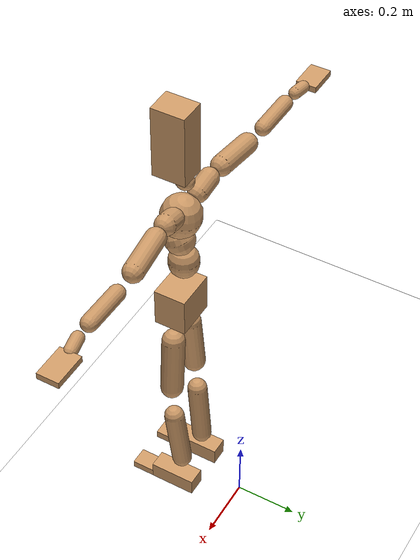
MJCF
<mujoco model="humanoid">
  <option integrator="implicitfast" />

  <visual>
    <global offwidth="1280" offheight="960" />
    <headlight active="1" ambient="0.34 0.34 0.34" diffuse="0.5 0.5 0.5" />
  </visual>

  <default>
    <joint damping="2" stiffness="2" armature="0.01" limited="true" solimplimit="0 .99 .01" />
    <geom condim="1" friction="0.7 0.005 0.0001" solimp=".99 .99 .003" solref="0.015 1" margin="0.001" rgba="0.8 0.6 .4 1" />
    <default class="smplcontact">
      <geom condim="3" friction="1. 0.005 0.0001" solref="0.015 1" solimp="0.98 0.98 0.001" priority="1" />
    </default>
    <default class="stiff_medium">
      <joint stiffness="10" />
    </default>
    <default class="stiff_medium_higher">
      <joint stiffness="50" />
    </default>
    <default class="stiff_high">
      <joint stiffness="100" />
    </default>
  </default>

  <asset>
    <texture type="skybox" builtin="gradient" rgb1="0.99 0.99 0.99" rgb2="0.608 0.828 0.892" width="100" />
    <texture builtin="flat" height="1278" mark="cross" markrgb="1 1 1" name="texgeom" random="0.01" rgb1="0.8 0.6 0.4" rgb2="0.8 0.6 0.4" type="cube" width="127" />
    <texture name="texplane" type="2d" builtin="checker" markrgb="1 1 1" rgb1="0.756 0.772 0.76" rgb2="0.6 0.6 0.6" width="100" height="100" />
    <material name="MatPlane" reflectance="0.5" texture="texplane" texrepeat="1 1" texuniform="true" />
    <material name="geom" texture="texgeom" texuniform="true" />
  </asset>

  <worldbody>
    <light name="tracking_light" pos="0 0 7" dir="0 0 -1" directional="true" cutoff="100" exponent="1" diffuse="1 1 1" specular="0.1 0.1 0.1" mode="trackcom" />
    <camera name="back" pos="0 3 2.4" xyaxes="-1 0 0 0 -1 2" mode="trackcom" />
    <camera name="side" pos="-3 0 2.4" xyaxes="0 -1 0 1 0 2" mode="trackcom" />
    <camera name="front_side" pos="-2.8 -2.8 0.8" xyaxes="0.5 -0.5 0 0.1 0.1 1" mode="trackcom" />
    <geom condim="3" name="floor" pos="0 0 0" rgba="1 1 1 1" size="100 100 .2" type="plane" material="MatPlane" />
    <body name="Pelvis" pos="-0.0018 -0.2233 0.78964" euler="90 0 0">
      <site name="Pelvis" size="0.01" />
      <freejoint name="Pelvis" />
      <geom type="box" pos="0 -0.0107248 -0.00342705" size="0.0666094 0.0639943 0.0517173" quat="1.0000 0.0000 0.0000 0.0000" density="3165.830099" name="Pelvis" />
      <body name="L_Hip" pos="0.0433055 -0.0810121 -0.00423708">
        <joint name="L_Hip_x" type="hinge" pos="0 0 0" axis="1 0 0" stiffness="10" range="-160.0 22.92" class="stiff_medium" damping="15" />
        <joint name="L_Hip_y" type="hinge" pos="0 0 0" axis="0 1 0" stiffness="10" range="-70.0 70.0" class="stiff_medium" damping="10" />
        <joint name="L_Hip_z" type="hinge" pos="0 0 0" axis="0 0 1" stiffness="10" range="-28.65 90.0" class="stiff_medium" damping="10" />
        <geom type="capsule" density="2040.816327" fromto="0.00589031 -0.0642261 -0.00077051 0.023445 -0.257071 -0.00308259" size="0.037023" name="L_Hip" />
        <body name="L_Knee" pos="0.0293353 -0.321297 -0.0038531">
          <joint name="L_Knee_x" type="hinge" pos="0 0 0" axis="1 0 0" range="-5.16 171.89" damping="8" />
          <joint name="L_Knee_y" type="hinge" pos="0 0 0" axis="0 1 0" range="-4.58 6.88" damping="8" />
          <joint name="L_Knee_z" type="hinge" pos="0 0 0" axis="0 0 1" range="-6.88 4.58" damping="8" />
          <geom type="capsule" density="1234.567901" fromto="-0.00232049 -0.0681614 -0.00746676 -0.00934236 -0.272652 -0.0299881" size="0.0325682" name="L_Knee" />
          <body name="L_Ankle" pos="-0.0116628 -0.340814 -0.0374549">
            <joint name="L_Ankle_x" type="hinge" pos="0 0 0" axis="1 0 0" range="-45.84 45.84" class="stiff_medium" damping="6" />
            <joint name="L_Ankle_y" type="hinge" pos="0 0 0" axis="0 1 0" range="-74.48 22.92" class="stiff_medium" damping="3" />
            <joint name="L_Ankle_z" type="hinge" pos="0 0 0" axis="0 0 1" range="-4.58 4.58" class="stiff_medium" damping="6" />
            <geom type="box" pos="0.0145182 -0.0148921 0.0215568" size="0.0300957 0.0289118 0.075716" quat="1.0000 0.0000 0.0000 0.0000" density="449.071558" name="L_Ankle" class="smplcontact" />
            <body name="L_Toe" pos="0.0164498 -0.034769 0.10627">
              <joint name="L_Toe_x" type="hinge" pos="0 0 0" axis="1 0 0" range="-91.67 22.92" />
              <joint name="L_Toe_y" type="hinge" pos="0 0 0" axis="0 1 0" range="-4.58 4.58" />
              <joint name="L_Toe_z" type="hinge" pos="0 0 0" axis="0 0 1" range="-4.58 4.58" />
              <geom type="box" pos="-0.0018693 0.00342705 0.0220913" size="0.0297842 0.012462 0.0441825" quat="1.0000 0.0000 0.0000 0.0000" density="423.206892" name="L_Toe" class="smplcontact" />
            </body>
          </body>
        </body>
      </body>
      <body name="R_Hip" pos="-0.0421839 -0.0802144 -0.00267933">
        <joint name="R_Hip_x" type="hinge" pos="0 0 0" axis="1 0 0" stiffness="10" range="-160.0 22.92" class="stiff_medium" damping="15" />
        <joint name="R_Hip_y" type="hinge" pos="0 0 0" axis="0 1 0" stiffness="10" range="-70.0 70.0" class="stiff_medium" damping="10" />
        <joint name="R_Hip_z" type="hinge" pos="0 0 0" axis="0 0 1" stiffness="10" range="-90.0 28.65" class="stiff_medium" damping="10" />
        <geom type="capsule" density="2040.816327" fromto="-0.00657611 -0.0655109 -0.00153276 -0.026186 -0.262123 -0.00607129" size="0.0364812" name="R_Hip" />
        <body name="R_Knee" pos="-0.0327621 -0.327634 -0.00760405">
          <joint name="R_Knee_x" type="hinge" pos="0 0 0" axis="1 0 0" range="-5.16 171.89" damping="8" />
          <joint name="R_Knee_y" type="hinge" pos="0 0 0" axis="0 1 0" range="-6.88 4.58" damping="8" />
          <joint name="R_Knee_z" type="hinge" pos="0 0 0" axis="0 0 1" range="-4.58 6.88" damping="8" />
          <geom type="capsule" density="1234.567901" fromto="0.00272371 -0.0682515 -0.00726296 0.0107732 -0.272914 -0.028928" size="0.0325682" name="R_Knee" />
          <body name="R_Ankle" pos="0.0134969 -0.341165 -0.036191">
            <joint name="R_Ankle_x" type="hinge" pos="0 0 0" axis="1 0 0" range="-45.84 45.84" class="stiff_medium" damping="6" />
            <joint name="R_Ankle_y" type="hinge" pos="0 0 0" axis="0 1 0" range="-22.92 74.48" class="stiff_medium" damping="3" />
            <joint name="R_Ankle_z" type="hinge" pos="0 0 0" axis="0 0 1" range="-4.58 4.58" class="stiff_medium" damping="6" />
            <geom type="box" pos="-0.0132097 -0.0108419 0.0228039" size="0.0300957 0.0297842 0.0770521" quat="1.0000 0.0000 0.0000 0.0000" density="434.700981" name="R_Ankle" class="smplcontact" />
            <body name="R_Toe" pos="-0.0158267 -0.0299711 0.109833">
              <joint name="R_Toe_x" type="hinge" pos="0 0 0" axis="1 0 0" range="-91.67 22.92" />
              <joint name="R_Toe_y" type="hinge" pos="0 0 0" axis="0 1 0" range="-4.58 4.58" />
              <joint name="R_Toe_z" type="hinge" pos="0 0 0" axis="0 0 1" range="-4.58 4.58" />
              <geom type="box" pos="0.00261702 0.00280395 0.0202206" size="0.0298465 0.013459 0.0439153" quat="1.0000 0.0000 0.0000 0.0000" density="407.384095" name="R_Toe" class="smplcontact" />
            </body>
          </body>
        </body>
      </body>
      <body name="Torso" pos="-0.00155775 0.0966118 -0.0166368">
        <joint name="Torso_x" type="hinge" pos="0 0 0" axis="1 0 0" range="-25.78 57.3" class="stiff_medium" damping="15" />
        <joint name="Torso_y" type="hinge" pos="0 0 0" axis="0 1 0" range="-57.3 57.3" class="stiff_high" damping="20" />
        <joint name="Torso_z" type="hinge" pos="0 0 0" axis="0 0 1" range="-34.38 34.38" class="stiff_high" damping="20" />
        <geom type="capsule" density="2040.816327" fromto="0.00215613 0.0540301 0.000431226 0.00260044 0.0660263 0.000520087" size="0.0480394" name="Torso" />
        <body name="Spine" pos="0.00475754 0.120145 0.000951509">
          <joint name="Spine_x" type="hinge" pos="0 0 0" axis="1 0 0" stiffness="10" range="-25.78 57.3" class="stiff_medium" damping="15" />
          <joint name="Spine_y" type="hinge" pos="0 0 0" axis="0 1 0" stiffness="10" range="-57.3 57.3" class="stiff_high" damping="8" />
          <joint name="Spine_z" type="hinge" pos="0 0 0" axis="0 0 1" stiffness="20" range="-34.38 34.38" class="stiff_high" damping="12" />
          <geom type="capsule" density="2040.816327" fromto="0.000555278 0.0211212 0.0101893 0.000644139 0.0258308 0.0124996" size="0.0471649" name="Spine" />
          <body name="Chest" pos="0.00119942 0.0469521 0.0226889">
            <joint name="Chest_x" type="hinge" pos="0 0 0" axis="1 0 0" stiffness="10" range="-25.78 57.3" class="stiff_medium" damping="15" />
            <joint name="Chest_y" type="hinge" pos="0 0 0" axis="0 1 0" stiffness="10" range="-57.3 57.3" class="stiff_high" damping="8" />
            <joint name="Chest_z" type="hinge" pos="0 0 0" axis="0 0 1" stiffness="20" range="-34.38 34.38" class="stiff_high" damping="12" />
            <geom type="capsule" density="2040.816327" fromto="-0.000681299 0.0605839 -0.015451 -0.00077016 0.0740019 -0.0189166" size="0.0625949" name="Chest" />
            <body name="Neck" pos="-0.0021178 0.189287 -0.0411764">
              <joint name="Neck_x" type="hinge" pos="0 0 0" axis="1 0 0" range="-28.65 57.3" class="stiff_medium_higher" damping="10" />
              <joint name="Neck_y" type="hinge" pos="0 0 0" axis="0 1 0" range="-40.11 40.11" class="stiff_medium_higher" damping="10" />
              <joint name="Neck_z" type="hinge" pos="0 0 0" axis="0 0 1" range="-40.11 40.11" class="stiff_medium_higher" damping="10" />
              <geom type="capsule" density="1000" fromto="0.000899901 0.0115839 0.00916921 0.00366131 0.0463242 0.0366051" size="0.0273023" name="Neck" />
              <body name="Head" pos="0.00462291 0.0578966 0.0457026">
                <joint name="Head_x" type="hinge" pos="0 0 0" axis="1 0 0" range="-28.65 57.3" class="stiff_medium_higher" damping="2" />
                <joint name="Head_y" type="hinge" pos="0 0 0" axis="0 1 0" range="-40.11 40.11" class="stiff_medium_higher" damping="2" />
                <joint name="Head_z" type="hinge" pos="0 0 0" axis="0 0 1" range="-40.11 40.11" class="stiff_medium_higher" damping="2" />
                <geom type="box" pos="-0.0029316 0.086982 -0.0080968" size="0.0422988 0.114586 0.053048" quat="1.0000 0.0000 0.0000 0.0000" density="1018.069894" name="Head" />
                <geom type="capsule" name="nose" size="0.01396 0.00698" pos="0 0.0695061 0.0349" quat="1 0 0 0" mass="0" contype="0" conaffinity="0" />
              </body>
            </body>
            <body name="L_Thorax" pos="0.0490134 0.108184 -0.029608">
              <joint name="L_Thorax_x" type="hinge" pos="0 0 0" axis="1 0 0" range="-10.89 4.58" class="stiff_medium_higher" damping="20" />
              <joint name="L_Thorax_y" type="hinge" pos="0 0 0" axis="0 1 0" range="-28.65 17.19" class="stiff_medium_higher" damping="20" />
              <joint name="L_Thorax_z" type="hinge" pos="0 0 0" axis="0 0 1" range="-31.51 40.11" class="stiff_medium_higher" damping="20" />
              <geom type="capsule" density="1000" fromto="0.0160911 0.00539316 -0.00158267 0.064362 0.0215719 -0.00626831" size="0.0323802" name="L_Thorax" />
              <body name="L_Shoulder" pos="0.0804531 0.026965 -0.00785098">
                <joint name="L_Shoulder_x" type="hinge" pos="0 0 0" axis="1 0 0" range="-97.4 97.4" class="stiff_medium" damping="6" />
                <joint name="L_Shoulder_y" type="hinge" pos="0 0 0" axis="0 1 0" range="-108.86 80.21" class="stiff_medium" damping="6" />
                <joint name="L_Shoulder_z" type="hinge" pos="0 0 0" axis="0 0 1" range="-97.4 85.94" class="stiff_medium" damping="6" />
                <geom type="capsule" density="1000" fromto="0.0451288 -0.00224315 -0.00478153 0.180599 -0.00885147 -0.0191285" size="0.0316042" name="L_Shoulder" />
                <body name="L_Elbow" pos="0.225728 -0.0110946 -0.0239101">
                  <joint name="L_Elbow_x" type="hinge" pos="0 0 0" axis="1 0 0" range="-17.19 4.58" damping="5" />
                  <joint name="L_Elbow_y" type="hinge" pos="0 0 0" axis="0 1 0" range="-180.0 17.19" damping="5" />
                  <joint name="L_Elbow_z" type="hinge" pos="0 0 0" axis="0 0 1" range="-100.84 4.58" damping="5" />
                  <geom type="capsule" density="1000" fromto="0.0433019 0.00156451 -0.00018243 0.173381 0.00625989 -0.000791091" size="0.0247576" name="L_Elbow" />
                  <body name="L_Wrist" pos="0.216683 0.0078244 -0.00103465">
                    <joint name="L_Wrist_x" type="hinge" pos="0 0 0" axis="1 0 0" range="-180.0 22.92" />
                    <joint name="L_Wrist_y" type="hinge" pos="0 0 0" axis="0 1 0" range="-17.19 17.19" />
                    <joint name="L_Wrist_z" type="hinge" pos="0 0 0" axis="0 0 1" range="-22.92 22.92" />
                    <geom type="capsule" density="1000" fromto="0.0146071 -0.00139975 -0.0026084 0.0584307 -0.00566038 -0.010434" size="0.0194393" name="L_Wrist" class="smplcontact" />
                    <body name="L_Hand" pos="0.0730357 -0.00712107 -0.012981">
                      <joint name="L_Hand_x" type="hinge" pos="0 0 0" axis="1 0 0" range="-17.19 17.19" />
                      <joint name="L_Hand_y" type="hinge" pos="0 0 0" axis="0 1 0" range="-51.57 51.57" />
                      <joint name="L_Hand_z" type="hinge" pos="0 0 0" axis="0 0 1" range="-91.67 91.67" />
                      <geom type="box" pos="0.0436969 0.0006231 -0.00361398" size="0.0518513 0.00984498 0.0335228" quat="1.0000 0.0000 0.0000 0.0000" density="400.552564" name="L_Hand" class="smplcontact" />
                    </body>
                  </body>
                </body>
              </body>
            </body>
            <body name="R_Thorax" pos="-0.0513123 0.106206 -0.032376">
              <joint name="R_Thorax_x" type="hinge" pos="0 0 0" axis="1 0 0" range="-10.89 4.58" class="stiff_medium_higher" damping="20" />
              <joint name="R_Thorax_y" type="hinge" pos="0 0 0" axis="0 1 0" range="-17.19 28.65" class="stiff_medium_higher" damping="20" />
              <joint name="R_Thorax_z" type="hinge" pos="0 0 0" axis="0 0 1" range="-40.11 31.51" class="stiff_medium_higher" damping="20" />
              <geom type="capsule" density="1000" fromto="-0.0169737 0.00574629 -0.00160003 -0.0678968 0.0229859 -0.00646249" size="0.0317586" name="R_Thorax" />
              <body name="R_Shoulder" pos="-0.0848784 0.028797 -0.00806328">
                <joint name="R_Shoulder_x" type="hinge" pos="0 0 0" axis="1 0 0" range="-97.4 97.4" class="stiff_medium" damping="6" />
                <joint name="R_Shoulder_y" type="hinge" pos="0 0 0" axis="0 1 0" range="-80.21 108.86" class="stiff_medium" damping="6" />
                <joint name="R_Shoulder_z" type="hinge" pos="0 0 0" axis="0 0 1" range="-85.94 97.4" class="stiff_medium" damping="6" />
                <geom type="capsule" density="1000" fromto="-0.0440858 -0.00233825 -0.00372898 -0.176513 -0.00929438 -0.0148588" size="0.03246" name="R_Shoulder" />
                <body name="R_Elbow" pos="-0.220597 -0.0115714 -0.0185876">
                  <joint name="R_Elbow_x" type="hinge" pos="0 0 0" axis="1 0 0" range="-17.19 4.58" damping="5" />
                  <joint name="R_Elbow_y" type="hinge" pos="0 0 0" axis="0 1 0" range="-17.19 180.0" damping="5" />
                  <joint name="R_Elbow_z" type="hinge" pos="0 0 0" axis="0 0 1" range="-4.58 100.84" damping="5" />
                  <geom type="capsule" density="1000" fromto="-0.0444327 0.00137454 -0.000956849 -0.177556 0.00537432 -0.00382625" size="0.024941" name="R_Elbow" />
                  <body name="R_Wrist" pos="-0.221989 0.00674887 -0.00484424">
                    <joint name="R_Wrist_x" type="hinge" pos="0 0 0" axis="1 0 0" range="-180.0 22.92" />
                    <joint name="R_Wrist_y" type="hinge" pos="0 0 0" axis="0 1 0" range="-17.19 17.19" />
                    <joint name="R_Wrist_z" type="hinge" pos="0 0 0" axis="0 0 1" range="-22.92 22.92" />
                    <geom type="capsule" density="1000" fromto="-0.0146954 -0.00105144 -0.0018164 -0.0588668 -0.00426865 -0.00720739" size="0.0199284" name="R_Wrist" class="smplcontact" />
                    <body name="R_Hand" pos="-0.0735591 -0.00531987 -0.00896228">
                      <joint name="R_Hand_x" type="hinge" pos="0 0 0" axis="1 0 0" range="-17.19 17.19" />
                      <joint name="R_Hand_y" type="hinge" pos="0 0 0" axis="0 1 0" range="-51.57 51.57" />
                      <joint name="R_Hand_z" type="hinge" pos="0 0 0" axis="0 0 1" range="-91.67 91.67" />
                      <geom type="box" pos="-0.0409492 -0.00056079 -0.00492249" size="0.0504331 0.0102188 0.0340213" quat="1.0000 0.0000 0.0000 0.0000" density="403.679611" name="R_Hand" class="smplcontact" />
                    </body>
                  </body>
                </body>
              </body>
            </body>
          </body>
        </body>
      </body>
    </body>
  </worldbody>
  <actuator>
    <general name="L_Hip_x" joint="L_Hip_x" biastype="affine" gainprm="287.33006409732246" biasprm="-215.3247604770444 -180 -2.0" ctrllimited="true" ctrlrange="-1 1" forcerange="-360 360" />
    <general name="L_Hip_y" joint="L_Hip_y" biastype="affine" gainprm="219.9114857512855" biasprm="0.0 -180 -2.0" ctrllimited="true" ctrlrange="-1 1" forcerange="-360 360" />
    <general name="L_Hip_z" joint="L_Hip_z" biastype="affine" gainprm="186.3749841742145" biasprm="96.3683546488669 -180 -2.0" ctrllimited="true" ctrlrange="-1 1" forcerange="-360 360" />
    <general name="L_Knee_x" joint="L_Knee_x" biastype="affine" gainprm="278.10948965903646" biasprm="261.8988715665131 -180 -2.0" ctrllimited="true" ctrlrange="-1 1" forcerange="-360 360" />
    <general name="L_Knee_y" joint="L_Knee_y" biastype="affine" gainprm="18.001325905069514" biasprm="3.612831551628262 -180 -2.0" ctrllimited="true" ctrlrange="-1 1" forcerange="-360 360" />
    <general name="L_Knee_z" joint="L_Knee_z" biastype="affine" gainprm="18.001325905069514" biasprm="-3.612831551628262 -180 -2.0" ctrllimited="true" ctrlrange="-1 1" forcerange="-360 360" />
    <general name="L_Ankle_x" joint="L_Ankle_x" biastype="affine" gainprm="72.00530362027807" biasprm="0.0 -90 -2.0" ctrllimited="true" ctrlrange="-1 1" forcerange="-180 180" />
    <general name="L_Ankle_y" joint="L_Ankle_y" biastype="affine" gainprm="76.49778111491148" biasprm="-40.49512930477244 -90 -2.0" ctrllimited="true" ctrlrange="-1 1" forcerange="-180 180" />
    <general name="L_Ankle_z" joint="L_Ankle_z" biastype="affine" gainprm="7.1942471767206255" biasprm="0.0 -90 -2.0" ctrllimited="true" ctrlrange="-1 1" forcerange="-180 180" />
    <general name="L_Toe_x" joint="L_Toe_x" biastype="affine" gainprm="71.99902043497087" biasprm="-43.19689898685965 -72 -0.8" ctrllimited="true" ctrlrange="-1 1" forcerange="-144 144" />
    <general name="L_Toe_y" joint="L_Toe_y" biastype="affine" gainprm="5.755397741376501" biasprm="0.0 -72 -0.8" ctrllimited="true" ctrlrange="-1 1" forcerange="-144 144" />
    <general name="L_Toe_z" joint="L_Toe_z" biastype="affine" gainprm="5.755397741376501" biasprm="0.0 -72 -0.8" ctrllimited="true" ctrlrange="-1 1" forcerange="-144 144" />
    <general name="R_Hip_x" joint="R_Hip_x" biastype="affine" gainprm="287.33006409732246" biasprm="-215.3247604770444 -180 -2.0" ctrllimited="true" ctrlrange="-1 1" forcerange="-360 360" />
    <general name="R_Hip_y" joint="R_Hip_y" biastype="affine" gainprm="219.9114857512855" biasprm="0.0 -180 -2.0" ctrllimited="true" ctrlrange="-1 1" forcerange="-360 360" />
    <general name="R_Hip_z" joint="R_Hip_z" biastype="affine" gainprm="186.3749841742145" biasprm="-96.3683546488669 -180 -2.0" ctrllimited="true" ctrlrange="-1 1" forcerange="-360 360" />
    <general name="R_Knee_x" joint="R_Knee_x" biastype="affine" gainprm="278.10948965903646" biasprm="261.8988715665131 -180 -2.0" ctrllimited="true" ctrlrange="-1 1" forcerange="-360 360" />
    <general name="R_Knee_y" joint="R_Knee_y" biastype="affine" gainprm="18.001325905069514" biasprm="-3.612831551628262 -180 -2.0" ctrllimited="true" ctrlrange="-1 1" forcerange="-360 360" />
    <general name="R_Knee_z" joint="R_Knee_z" biastype="affine" gainprm="18.001325905069514" biasprm="3.612831551628262 -180 -2.0" ctrllimited="true" ctrlrange="-1 1" forcerange="-360 360" />
    <general name="R_Ankle_x" joint="R_Ankle_x" biastype="affine" gainprm="72.00530362027807" biasprm="0.0 -90 -2.0" ctrllimited="true" ctrlrange="-1 1" forcerange="-180 180" />
    <general name="R_Ankle_y" joint="R_Ankle_y" biastype="affine" gainprm="76.49778111491148" biasprm="40.49512930477244 -90 -2.0" ctrllimited="true" ctrlrange="-1 1" forcerange="-180 180" />
    <general name="R_Ankle_z" joint="R_Ankle_z" biastype="affine" gainprm="7.1942471767206255" biasprm="0.0 -90 -2.0" ctrllimited="true" ctrlrange="-1 1" forcerange="-180 180" />
    <general name="R_Toe_x" joint="R_Toe_x" biastype="affine" gainprm="71.99902043497087" biasprm="-43.19689898685965 -72 -0.8" ctrllimited="true" ctrlrange="-1 1" forcerange="-144 144" />
    <general name="R_Toe_y" joint="R_Toe_y" biastype="affine" gainprm="5.755397741376501" biasprm="0.0 -72 -0.8" ctrllimited="true" ctrlrange="-1 1" forcerange="-144 144" />
    <general name="R_Toe_z" joint="R_Toe_z" biastype="affine" gainprm="5.755397741376501" biasprm="0.0 -72 -0.8" ctrllimited="true" ctrlrange="-1 1" forcerange="-144 144" />
    <general name="Torso_x" joint="Torso_x" biastype="affine" gainprm="174.00234510682668" biasprm="66.0153336274335 -240 -4.0" ctrllimited="true" ctrlrange="-1 1" forcerange="-360 360" />
    <general name="Torso_y" joint="Torso_y" biastype="affine" gainprm="240.0176787342602" biasprm="0.0 -240 -4.0" ctrllimited="true" ctrlrange="-1 1" forcerange="-360 360" />
    <general name="Torso_z" joint="Torso_z" biastype="affine" gainprm="144.01060724055614" biasprm="0.0 -240 -4.0" ctrllimited="true" ctrlrange="-1 1" forcerange="-360 360" />
    <general name="Spine_x" joint="Spine_x" biastype="affine" gainprm="174.00234510682668" biasprm="66.0153336274335 -240 -4.0" ctrllimited="true" ctrlrange="-1 1" forcerange="-360 360" />
    <general name="Spine_y" joint="Spine_y" biastype="affine" gainprm="240.0176787342602" biasprm="0.0 -240 -4.0" ctrllimited="true" ctrlrange="-1 1" forcerange="-360 360" />
    <general name="Spine_z" joint="Spine_z" biastype="affine" gainprm="144.01060724055614" biasprm="0.0 -240 -4.0" ctrllimited="true" ctrlrange="-1 1" forcerange="-360 360" />
    <general name="Chest_x" joint="Chest_x" biastype="affine" gainprm="174.00234510682668" biasprm="66.0153336274335 -240 -4.0" ctrllimited="true" ctrlrange="-1 1" forcerange="-360 360" />
    <general name="Chest_y" joint="Chest_y" biastype="affine" gainprm="240.0176787342602" biasprm="0.0 -240 -4.0" ctrllimited="true" ctrlrange="-1 1" forcerange="-360 360" />
    <general name="Chest_z" joint="Chest_z" biastype="affine" gainprm="144.01060724055614" biasprm="0.0 -240 -4.0" ctrllimited="true" ctrlrange="-1 1" forcerange="-360 360" />
    <general name="Neck_x" joint="Neck_x" biastype="affine" gainprm="27.00198885760427" biasprm="9.000662952534757 -36 -0.8" ctrllimited="true" ctrlrange="-1 1" forcerange="-72 72" />
    <general name="Neck_y" joint="Neck_y" biastype="affine" gainprm="25.20185626709732" biasprm="0.0 -36 -0.8" ctrllimited="true" ctrlrange="-1 1" forcerange="-72 72" />
    <general name="Neck_z" joint="Neck_z" biastype="affine" gainprm="25.20185626709732" biasprm="0.0 -36 -0.8" ctrllimited="true" ctrlrange="-1 1" forcerange="-72 72" />
    <general name="Head_x" joint="Head_x" biastype="affine" gainprm="18.001325905069514" biasprm="6.000441968356505 -24 -0.8" ctrllimited="true" ctrlrange="-1 1" forcerange="-48 48" />
    <general name="Head_y" joint="Head_y" biastype="affine" gainprm="16.801237511398213" biasprm="0.0 -24 -0.8" ctrllimited="true" ctrlrange="-1 1" forcerange="-48 48" />
    <general name="Head_z" joint="Head_z" biastype="affine" gainprm="16.801237511398213" biasprm="0.0 -24 -0.8" ctrllimited="true" ctrlrange="-1 1" forcerange="-48 48" />
    <general name="L_Thorax_x" joint="L_Thorax_x" biastype="affine" gainprm="16.200146117011364" biasprm="-6.6078165480505335 -120 -1.6" ctrllimited="true" ctrlrange="-1 1" forcerange="-240 240" />
    <general name="L_Thorax_y" joint="L_Thorax_y" biastype="affine" gainprm="48.00353574685204" biasprm="-12.00088393671301 -120 -1.6" ctrllimited="true" ctrlrange="-1 1" forcerange="-240 240" />
    <general name="L_Thorax_z" joint="L_Thorax_z" biastype="affine" gainprm="75.00028861670033" biasprm="9.00589894029074 -120 -1.6" ctrllimited="true" ctrlrange="-1 1" forcerange="-240 240" />
    <general name="L_Shoulder_x" joint="L_Shoulder_x" biastype="affine" gainprm="81.5976331892389" biasprm="0.0 -48 -1.6" ctrllimited="true" ctrlrange="-1 1" forcerange="-96 96" />
    <general name="L_Shoulder_y" joint="L_Shoulder_y" biastype="affine" gainprm="79.19745640189629" biasprm="-12.00088393671301 -48 -1.6" ctrllimited="true" ctrlrange="-1 1" forcerange="-96 96" />
    <general name="L_Shoulder_z" joint="L_Shoulder_z" biastype="affine" gainprm="76.79727961455369" biasprm="-4.800353574685214 -48 -1.6" ctrllimited="true" ctrlrange="-1 1" forcerange="-96 96" />
    <general name="L_Elbow_x" joint="L_Elbow_x" biastype="affine" gainprm="13.67849441372996" biasprm="-7.923096672353461 -72 -0.8" ctrllimited="true" ctrlrange="-1 1" forcerange="-144 144" />
    <general name="L_Elbow_y" joint="L_Elbow_y" biastype="affine" gainprm="123.89813107227425" biasprm="-102.29653998619085 -72 -0.8" ctrllimited="true" ctrlrange="-1 1" forcerange="-144 144" />
    <general name="L_Elbow_z" joint="L_Elbow_z" biastype="affine" gainprm="66.23733950828719" biasprm="-60.4819417669107 -72 -0.8" ctrllimited="true" ctrlrange="-1 1" forcerange="-144 144" />
    <general name="L_Wrist_x" joint="L_Wrist_x" biastype="affine" gainprm="21.24973270888136" biasprm="-16.449379134196157 -12 -0.8" ctrllimited="true" ctrlrange="-1 1" forcerange="-24 24" />
    <general name="L_Wrist_y" joint="L_Wrist_y" biastype="affine" gainprm="3.6002651810139037" biasprm="0.0 -12 -0.8" ctrllimited="true" ctrlrange="-1 1" forcerange="-24 24" />
    <general name="L_Wrist_z" joint="L_Wrist_z" biastype="affine" gainprm="4.800353574685205" biasprm="0.0 -12 -0.8" ctrllimited="true" ctrlrange="-1 1" forcerange="-24 24" />
    <general name="L_Hand_x" joint="L_Hand_x" biastype="affine" gainprm="3.6002651810139037" biasprm="0.0 -12 -0.8" ctrllimited="true" ctrlrange="-1 1" forcerange="-24 24" />
    <general name="L_Hand_y" joint="L_Hand_y" biastype="affine" gainprm="10.800795543041708" biasprm="0.0 -12 -0.8" ctrllimited="true" ctrlrange="-1 1" forcerange="-24 24" />
    <general name="L_Hand_z" joint="L_Hand_z" biastype="affine" gainprm="19.199319903638422" biasprm="0.0 -12 -0.8" ctrllimited="true" ctrlrange="-1 1" forcerange="-24 24" />
    <general name="R_Thorax_x" joint="R_Thorax_x" biastype="affine" gainprm="16.200146117011364" biasprm="-6.6078165480505335 -120 -1.6" ctrllimited="true" ctrlrange="-1 1" forcerange="-240 240" />
    <general name="R_Thorax_y" joint="R_Thorax_y" biastype="affine" gainprm="48.00353574685204" biasprm="12.000883936713002 -120 -1.6" ctrllimited="true" ctrlrange="-1 1" forcerange="-240 240" />
    <general name="R_Thorax_z" joint="R_Thorax_z" biastype="affine" gainprm="75.00028861670033" biasprm="-9.00589894029074 -120 -1.6" ctrllimited="true" ctrlrange="-1 1" forcerange="-240 240" />
    <general name="R_Shoulder_x" joint="R_Shoulder_x" biastype="affine" gainprm="81.5976331892389" biasprm="0.0 -48 -1.6" ctrllimited="true" ctrlrange="-1 1" forcerange="-96 96" />
    <general name="R_Shoulder_y" joint="R_Shoulder_y" biastype="affine" gainprm="79.19745640189629" biasprm="12.00088393671301 -48 -1.6" ctrllimited="true" ctrlrange="-1 1" forcerange="-96 96" />
    <general name="R_Shoulder_z" joint="R_Shoulder_z" biastype="affine" gainprm="76.79727961455369" biasprm="4.800353574685204 -48 -1.6" ctrllimited="true" ctrlrange="-1 1" forcerange="-96 96" />
    <general name="R_Elbow_x" joint="R_Elbow_x" biastype="affine" gainprm="13.67849441372996" biasprm="-7.923096672353461 -72 -0.8" ctrllimited="true" ctrlrange="-1 1" forcerange="-144 144" />
    <general name="R_Elbow_y" joint="R_Elbow_y" biastype="affine" gainprm="123.89813107227425" biasprm="102.29653998619085 -72 -0.8" ctrllimited="true" ctrlrange="-1 1" forcerange="-144 144" />
    <general name="R_Elbow_z" joint="R_Elbow_z" biastype="affine" gainprm="66.23733950828719" biasprm="60.481941766910694 -72 -0.8" ctrllimited="true" ctrlrange="-1 1" forcerange="-144 144" />
    <general name="R_Wrist_x" joint="R_Wrist_x" biastype="affine" gainprm="21.24973270888136" biasprm="-16.449379134196157 -12 -0.8" ctrllimited="true" ctrlrange="-1 1" forcerange="-24 24" />
    <general name="R_Wrist_y" joint="R_Wrist_y" biastype="affine" gainprm="3.6002651810139037" biasprm="0.0 -12 -0.8" ctrllimited="true" ctrlrange="-1 1" forcerange="-24 24" />
    <general name="R_Wrist_z" joint="R_Wrist_z" biastype="affine" gainprm="4.800353574685205" biasprm="0.0 -12 -0.8" ctrllimited="true" ctrlrange="-1 1" forcerange="-24 24" />
    <general name="R_Hand_x" joint="R_Hand_x" biastype="affine" gainprm="3.6002651810139037" biasprm="0.0 -12 -0.8" ctrllimited="true" ctrlrange="-1 1" forcerange="-24 24" />
    <general name="R_Hand_y" joint="R_Hand_y" biastype="affine" gainprm="10.800795543041708" biasprm="0.0 -12 -0.8" ctrllimited="true" ctrlrange="-1 1" forcerange="-24 24" />
    <general name="R_Hand_z" joint="R_Hand_z" biastype="affine" gainprm="19.199319903638422" biasprm="0.0 -12 -0.8" ctrllimited="true" ctrlrange="-1 1" forcerange="-24 24" />
  </actuator>
  <contact>
    <exclude body1="Torso" body2="Chest" />
    <exclude body1="Head" body2="Chest" />
    <exclude body1="R_Knee" body2="R_Toe" />
    <exclude body1="R_Knee" body2="L_Ankle" />
    <exclude body1="R_Knee" body2="L_Toe" />
    <exclude body1="L_Knee" body2="L_Toe" />
    <exclude body1="L_Knee" body2="R_Ankle" />
    <exclude body1="L_Knee" body2="R_Toe" />
    <exclude body1="L_Shoulder" body2="Chest" />
    <exclude body1="R_Shoulder" body2="Chest" />
  </contact>
  <sensor>
    <framelinvel name="sensor_Pelvis_framelinvel" objtype="xbody" objname="Pelvis" />
    <framelinvel name="sensor_L_Hip_framelinvel" objtype="xbody" objname="L_Hip" />
    <framelinvel name="sensor_L_Knee_framelinvel" objtype="xbody" objname="L_Knee" />
    <framelinvel name="sensor_L_Ankle_framelinvel" objtype="xbody" objname="L_Ankle" />
    <framelinvel name="sensor_L_Toe_framelinvel" objtype="xbody" objname="L_Toe" />
    <framelinvel name="sensor_R_Hip_framelinvel" objtype="xbody" objname="R_Hip" />
    <framelinvel name="sensor_R_Knee_framelinvel" objtype="xbody" objname="R_Knee" />
    <framelinvel name="sensor_R_Ankle_framelinvel" objtype="xbody" objname="R_Ankle" />
    <framelinvel name="sensor_R_Toe_framelinvel" objtype="xbody" objname="R_Toe" />
    <framelinvel name="sensor_Torso_framelinvel" objtype="xbody" objname="Torso" />
    <framelinvel name="sensor_Spine_framelinvel" objtype="xbody" objname="Spine" />
    <framelinvel name="sensor_Chest_framelinvel" objtype="xbody" objname="Chest" />
    <framelinvel name="sensor_Neck_framelinvel" objtype="xbody" objname="Neck" />
    <framelinvel name="sensor_Head_framelinvel" objtype="xbody" objname="Head" />
    <framelinvel name="sensor_L_Thorax_framelinvel" objtype="xbody" objname="L_Thorax" />
    <framelinvel name="sensor_L_Shoulder_framelinvel" objtype="xbody" objname="L_Shoulder" />
    <framelinvel name="sensor_L_Elbow_framelinvel" objtype="xbody" objname="L_Elbow" />
    <framelinvel name="sensor_L_Wrist_framelinvel" objtype="xbody" objname="L_Wrist" />
    <framelinvel name="sensor_L_Hand_framelinvel" objtype="xbody" objname="L_Hand" />
    <framelinvel name="sensor_R_Thorax_framelinvel" objtype="xbody" objname="R_Thorax" />
    <framelinvel name="sensor_R_Shoulder_framelinvel" objtype="xbody" objname="R_Shoulder" />
    <framelinvel name="sensor_R_Elbow_framelinvel" objtype="xbody" objname="R_Elbow" />
    <framelinvel name="sensor_R_Wrist_framelinvel" objtype="xbody" objname="R_Wrist" />
    <framelinvel name="sensor_R_Hand_framelinvel" objtype="xbody" objname="R_Hand" />
    <frameangvel name="sensor_Pelvis_frameangvel" objtype="xbody" objname="Pelvis" />
    <frameangvel name="sensor_L_Hip_frameangvel" objtype="xbody" objname="L_Hip" />
    <frameangvel name="sensor_L_Knee_frameangvel" objtype="xbody" objname="L_Knee" />
    <frameangvel name="sensor_L_Ankle_frameangvel" objtype="xbody" objname="L_Ankle" />
    <frameangvel name="sensor_L_Toe_frameangvel" objtype="xbody" objname="L_Toe" />
    <frameangvel name="sensor_R_Hip_frameangvel" objtype="xbody" objname="R_Hip" />
    <frameangvel name="sensor_R_Knee_frameangvel" objtype="xbody" objname="R_Knee" />
    <frameangvel name="sensor_R_Ankle_frameangvel" objtype="xbody" objname="R_Ankle" />
    <frameangvel name="sensor_R_Toe_frameangvel" objtype="xbody" objname="R_Toe" />
    <frameangvel name="sensor_Torso_frameangvel" objtype="xbody" objname="Torso" />
    <frameangvel name="sensor_Spine_frameangvel" objtype="xbody" objname="Spine" />
    <frameangvel name="sensor_Chest_frameangvel" objtype="xbody" objname="Chest" />
    <frameangvel name="sensor_Neck_frameangvel" objtype="xbody" objname="Neck" />
    <frameangvel name="sensor_Head_frameangvel" objtype="xbody" objname="Head" />
    <frameangvel name="sensor_L_Thorax_frameangvel" objtype="xbody" objname="L_Thorax" />
    <frameangvel name="sensor_L_Shoulder_frameangvel" objtype="xbody" objname="L_Shoulder" />
    <frameangvel name="sensor_L_Elbow_frameangvel" objtype="xbody" objname="L_Elbow" />
    <frameangvel name="sensor_L_Wrist_frameangvel" objtype="xbody" objname="L_Wrist" />
    <frameangvel name="sensor_L_Hand_frameangvel" objtype="xbody" objname="L_Hand" />
    <frameangvel name="sensor_R_Thorax_frameangvel" objtype="xbody" objname="R_Thorax" />
    <frameangvel name="sensor_R_Shoulder_frameangvel" objtype="xbody" objname="R_Shoulder" />
    <frameangvel name="sensor_R_Elbow_frameangvel" objtype="xbody" objname="R_Elbow" />
    <frameangvel name="sensor_R_Wrist_frameangvel" objtype="xbody" objname="R_Wrist" />
    <frameangvel name="sensor_R_Hand_frameangvel" objtype="xbody" objname="R_Hand" />
    <subtreelinvel name="Chest_subtreelinvel" body="Chest" />
    <gyro name="Pelvis_gyro" site="Pelvis" />
  </sensor>
</mujoco>
